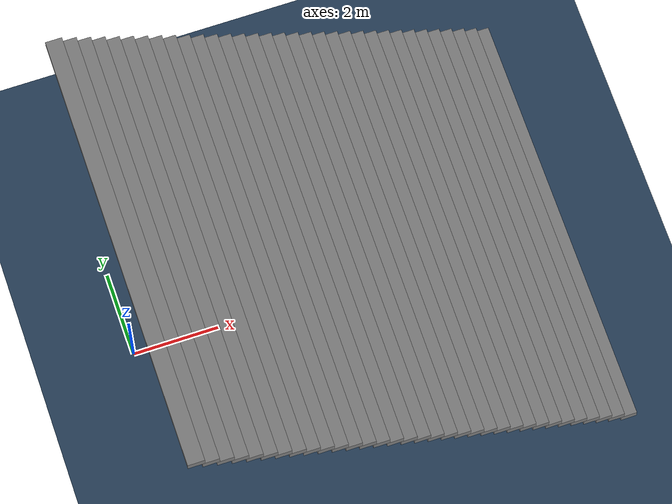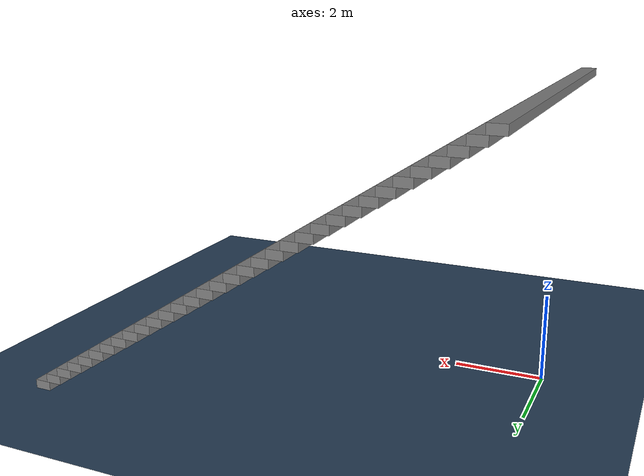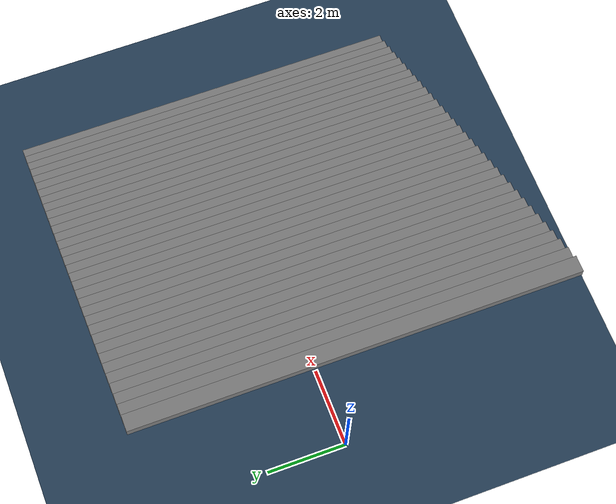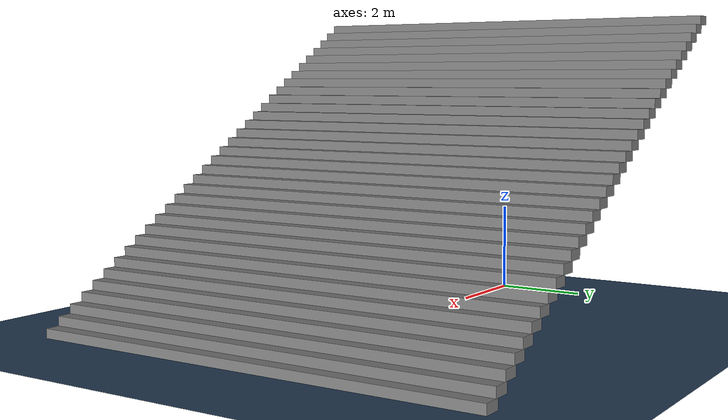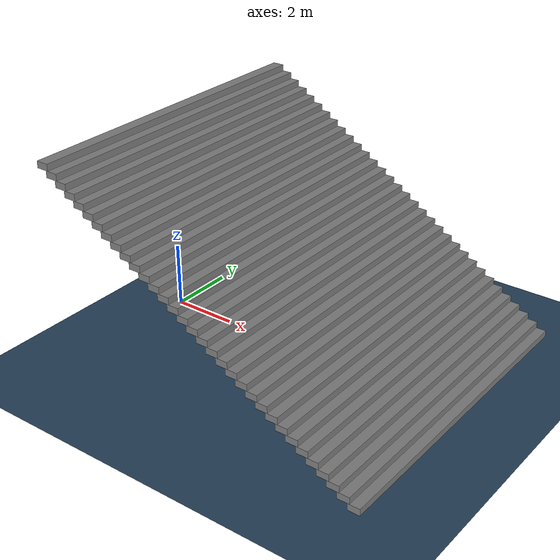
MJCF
<mujoco model="stairs_down_7">
  <!-- Terrain Type: stairs_down, Level: 7, Stairs step height: 0.2000 -->
  <statistic center="0 0 0.1" extent="0.8" />
  <visual>
    <headlight diffuse="0.6 0.6 0.6" ambient="0.3 0.3 0.3" specular="0 0 0" />
    <rgba haze="0.15 0.25 0.35 1" />
    <global azimuth="-130" elevation="-20" />
  </visual>
  <asset>
    <texture type="skybox" builtin="gradient" rgb1="0.3 0.5 0.7" rgb2="0 0 0" width="512" height="3072" />
    <texture type="2d" name="groundplane" builtin="checker" mark="edge" rgb1="0.2 0.3 0.4" rgb2="0.1 0.2 0.3" markrgb="0.8 0.8 0.8" width="300" height="300" />
    <material name="groundplane" texture="groundplane" texuniform="true" texrepeat="5 5" reflectance="0.0" />
  </asset>
  <worldbody>
    <light pos="0 0 1.5" dir="0 0 -1" directional="true" />
    <geom name="floor" size="0 0 0.05" type="plane" material="groundplane" />
    <geom pos="0.155 0.0 6.5" type="box" size="0.186 5.0 0.1" quat="1.0 0.0 0.0 0.0" />
    <geom pos="0.46499999999999997 0.0 6.3" type="box" size="0.186 5.0 0.1" quat="1.0 0.0 0.0 0.0" />
    <geom pos="0.7749999999999999 0.0 6.1" type="box" size="0.186 5.0 0.1" quat="1.0 0.0 0.0 0.0" />
    <geom pos="1.085 0.0 5.8999999999999995" type="box" size="0.186 5.0 0.1" quat="1.0 0.0 0.0 0.0" />
    <geom pos="1.395 0.0 5.699999999999999" type="box" size="0.186 5.0 0.1" quat="1.0 0.0 0.0 0.0" />
    <geom pos="1.705 0.0 5.499999999999999" type="box" size="0.186 5.0 0.1" quat="1.0 0.0 0.0 0.0" />
    <geom pos="2.015 0.0 5.299999999999999" type="box" size="0.186 5.0 0.1" quat="1.0 0.0 0.0 0.0" />
    <geom pos="2.325 0.0 5.099999999999999" type="box" size="0.186 5.0 0.1" quat="1.0 0.0 0.0 0.0" />
    <geom pos="2.6350000000000002 0.0 4.899999999999999" type="box" size="0.186 5.0 0.1" quat="1.0 0.0 0.0 0.0" />
    <geom pos="2.9450000000000003 0.0 4.699999999999998" type="box" size="0.186 5.0 0.1" quat="1.0 0.0 0.0 0.0" />
    <geom pos="3.2550000000000003 0.0 4.499999999999998" type="box" size="0.186 5.0 0.1" quat="1.0 0.0 0.0 0.0" />
    <geom pos="3.5650000000000004 0.0 4.299999999999998" type="box" size="0.186 5.0 0.1" quat="1.0 0.0 0.0 0.0" />
    <geom pos="3.8750000000000004 0.0 4.099999999999998" type="box" size="0.186 5.0 0.1" quat="1.0 0.0 0.0 0.0" />
    <geom pos="4.1850000000000005 0.0 3.8999999999999977" type="box" size="0.186 5.0 0.1" quat="1.0 0.0 0.0 0.0" />
    <geom pos="4.495 0.0 3.6999999999999975" type="box" size="0.186 5.0 0.1" quat="1.0 0.0 0.0 0.0" />
    <geom pos="4.805 0.0 3.4999999999999973" type="box" size="0.186 5.0 0.1" quat="1.0 0.0 0.0 0.0" />
    <geom pos="5.114999999999999 0.0 3.299999999999997" type="box" size="0.186 5.0 0.1" quat="1.0 0.0 0.0 0.0" />
    <geom pos="5.424999999999999 0.0 3.099999999999997" type="box" size="0.186 5.0 0.1" quat="1.0 0.0 0.0 0.0" />
    <geom pos="5.7349999999999985 0.0 2.899999999999997" type="box" size="0.186 5.0 0.1" quat="1.0 0.0 0.0 0.0" />
    <geom pos="6.044999999999998 0.0 2.6999999999999966" type="box" size="0.186 5.0 0.1" quat="1.0 0.0 0.0 0.0" />
    <geom pos="6.354999999999998 0.0 2.4999999999999964" type="box" size="0.186 5.0 0.1" quat="1.0 0.0 0.0 0.0" />
    <geom pos="6.664999999999997 0.0 2.2999999999999963" type="box" size="0.186 5.0 0.1" quat="1.0 0.0 0.0 0.0" />
    <geom pos="6.974999999999997 0.0 2.099999999999996" type="box" size="0.186 5.0 0.1" quat="1.0 0.0 0.0 0.0" />
    <geom pos="7.284999999999997 0.0 1.8999999999999961" type="box" size="0.186 5.0 0.1" quat="1.0 0.0 0.0 0.0" />
    <geom pos="7.594999999999996 0.0 1.6999999999999962" type="box" size="0.186 5.0 0.1" quat="1.0 0.0 0.0 0.0" />
    <geom pos="7.904999999999996 0.0 1.4999999999999962" type="box" size="0.186 5.0 0.1" quat="1.0 0.0 0.0 0.0" />
    <geom pos="8.214999999999996 0.0 1.2999999999999963" type="box" size="0.186 5.0 0.1" quat="1.0 0.0 0.0 0.0" />
    <geom pos="8.524999999999997 0.0 1.0999999999999963" type="box" size="0.186 5.0 0.1" quat="1.0 0.0 0.0 0.0" />
    <geom pos="8.834999999999997 0.0 0.8999999999999964" type="box" size="0.186 5.0 0.1" quat="1.0 0.0 0.0 0.0" />
    <geom pos="9.144999999999998 0.0 0.6999999999999964" type="box" size="0.186 5.0 0.1" quat="1.0 0.0 0.0 0.0" />
    <geom pos="9.454999999999998 0.0 0.4999999999999964" type="box" size="0.186 5.0 0.1" quat="1.0 0.0 0.0 0.0" />
    <geom pos="9.764999999999999 0.0 0.2999999999999964" type="box" size="0.186 5.0 0.1" quat="1.0 0.0 0.0 0.0" />
    <geom pos="10.075 0.0 0.09999999999999637" type="box" size="0.186 5.0 0.1" quat="1.0 0.0 0.0 0.0" />
  </worldbody>
</mujoco>
